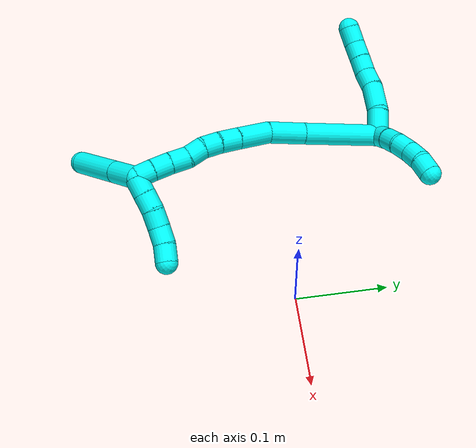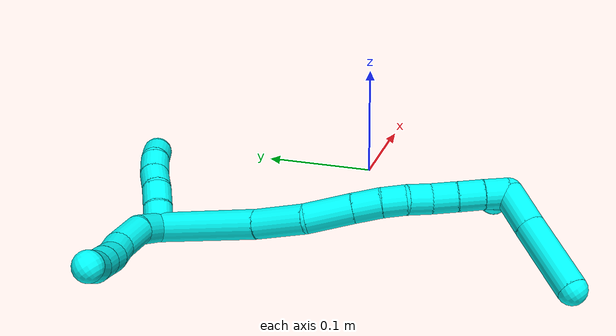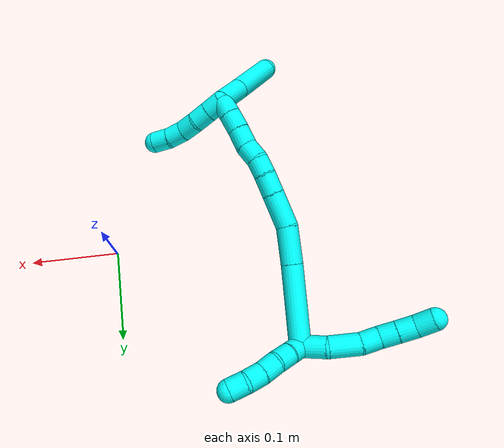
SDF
<sdf version="1.7">
 <world name="default">
  <model name="photoneo_s_sensor">
   <static>1</static>
   <pose>0 0 2 1.57079 1.57079 3.14159</pose>
   <link name="link">
    <inertial><mass>0.1</mass></inertial>
    <sensor name="sensor" type="depth">
     <update_rate>30</update_rate>
     <camera>
      <horizontal_fov>1.22</horizontal_fov>
      <image><width>1920</width><height>1200</height><format>B8G8R8</format></image>
      <clip><near>0.1</near><far>4</far></clip>
      <depth_camera><output>points</output></depth_camera>
     </camera>
     <plugin name="camera_plugin" filename="libgazebo_ros_depth_camera.so">
      <baseline>0.2</baseline>
      <alwaysOn>1</alwaysOn>
      <updateRate>0.0</updateRate>
      <cameraName>camera_ir</cameraName>
      <imageTopicName>/camera/color/image_raw</imageTopicName>
      <cameraInfoTopicName>/camera/color/camera_info</cameraInfoTopicName>
      <depthImageTopicName>/camera/depth/image_raw</depthImageTopicName>
      <depthImageCameraInfoTopicName>/camera/depth/camera_info</depthImageCameraInfoTopicName>
      <pointCloudTopicName>/camera/depth/points</pointCloudTopicName>
      <frameName>fr_optical</frameName>
      <pointCloudCutoff>0.1</pointCloudCutoff>
      <pointCloudCutoffMax>2.0</pointCloudCutoffMax>
      <distortionK1>0</distortionK1>
      <distortionK2>0</distortionK2>
      <distortionK3>0</distortionK3>
      <distortionT1>0</distortionT1>
      <distortionT2>0</distortionT2>
      <CxPrime>0</CxPrime>
      <Cx>0</Cx>
      <Cy>0</Cy>
      <focalLength>0</focalLength>
      <hackBaseline>0</hackBaseline>
     </plugin>
    </sensor>
   </link>
  </model>
  <model name="bin">
   <static>1</static>
   <link name="bottom">
    <collision name="collision-bottom">
     <pose>0 0 -0.01 0 -0 0</pose>
     <geometry><box><size>0.8 0.6 0.02</size></box></geometry>
     <surface>
      <friction><ode><mu>100</mu><mu2>100</mu2></ode></friction>
      <contact><collide_bitmask>65535</collide_bitmask></contact>
     </surface>
    </collision>
   </link>
   <link name="west_wall">
    <collision name="collision-west_wall">
     <pose>-0.41 0 0.1 0 -0 0</pose>
     <geometry><box><size>0.02 0.6 0.2</size></box></geometry>
     <surface>
      <friction><ode><mu>100</mu><mu2>100</mu2></ode></friction>
      <contact><collide_bitmask>65535</collide_bitmask></contact>
     </surface>
    </collision>
   </link>
   <link name="east_wall">
    <collision name="collision-east_wall">
     <pose>0.41 0 0.1 0 -0 0</pose>
     <geometry><box><size>0.02 0.6 0.2</size></box></geometry>
     <surface>
      <friction><ode><mu>100</mu><mu2>100</mu2></ode></friction>
      <contact><collide_bitmask>65535</collide_bitmask></contact>
     </surface>
    </collision>
   </link>
   <link name="south_wall">
    <collision name="collision-south_wall">
     <pose>0 -0.31 0.1 0 -0 0</pose>
     <geometry><box><size>0.8 0.02 0.2</size></box></geometry>
     <surface>
      <friction><ode><mu>100</mu><mu2>100</mu2></ode></friction>
      <contact><collide_bitmask>65535</collide_bitmask></contact>
     </surface>
    </collision>
   </link>
   <link name="north_wall">
    <collision name="collision-north_wall">
     <pose>0 0.31 0.1 0 -0 0</pose>
     <geometry><box><size>0.8 0.02 0.2</size></box></geometry>
     <surface>
      <friction><ode><mu>100</mu><mu2>100</mu2></ode></friction>
      <contact><collide_bitmask>65535</collide_bitmask></contact>
     </surface>
    </collision>
   </link>
  </model>
  <model name="3">
   <static>0</static>
   <link name="3">
    <collision name="collision-cylinder-e_1_2_8">
     <pose>0.012605 0.00793 -0.002761 -1.90584 0.98314 -1.29127</pose>
     <geometry><cylinder><radius>0.0125</radius><length>0.030291</length></cylinder></geometry>
     <surface>
      <friction><ode><mu>1.16</mu><mu2>1.16</mu2><slip1>0</slip1><slip2>0</slip2></ode></friction>
      <contact><ode><kp>1e+06</kp><kd>1</kd><max_vel>0</max_vel><min_depth>0.001</min_depth></ode></contact>
     </surface>
    </collision>
    <visual name="visual-cylinder-e_1_2_8">
     <pose>0.012605 0.00793 -0.002761 -1.90584 0.98314 -1.29127</pose>
     <geometry><cylinder><radius>0.0125</radius><length>0.030291</length></cylinder></geometry>
     <material><ambient>0.003922 1 0.996078 1</ambient></material>
    </visual>
    <collision name="collision-cylinder-e_2_8_9">
     <pose>0.039563 0.02635 -0.003121 -1.34579 0.927458 -0.758546</pose>
     <geometry><cylinder><radius>0.0125</radius><length>0.035881</length></cylinder></geometry>
     <surface>
      <friction><ode><mu>1.16</mu><mu2>1.16</mu2><slip1>0</slip1><slip2>0</slip2></ode></friction>
      <contact><ode><kp>1e+06</kp><kd>1</kd><max_vel>0</max_vel><min_depth>0.001</min_depth></ode></contact>
     </surface>
    </collision>
    <visual name="visual-cylinder-e_2_8_9">
     <pose>0.039563 0.02635 -0.003121 -1.34579 0.927458 -0.758546</pose>
     <geometry><cylinder><radius>0.0125</radius><length>0.035881</length></cylinder></geometry>
     <material><ambient>0.003922 1 0.996078 1</ambient></material>
    </visual>
    <collision name="collision-cylinder-e_3_9_10">
     <pose>0.063567 0.04126 0.001845 -1.04495 1.08386 -0.667456</pose>
     <geometry><cylinder><radius>0.0125</radius><length>0.021838</length></cylinder></geometry>
     <surface>
      <friction><ode><mu>1.16</mu><mu2>1.16</mu2><slip1>0</slip1><slip2>0</slip2></ode></friction>
      <contact><ode><kp>1e+06</kp><kd>1</kd><max_vel>0</max_vel><min_depth>0.001</min_depth></ode></contact>
     </surface>
    </collision>
    <visual name="visual-cylinder-e_3_9_10">
     <pose>0.063567 0.04126 0.001845 -1.04495 1.08386 -0.667456</pose>
     <geometry><cylinder><radius>0.0125</radius><length>0.021838</length></cylinder></geometry>
     <material><ambient>0.003922 1 0.996078 1</ambient></material>
    </visual>
    <collision name="collision-cylinder-e_4_10_11">
     <pose>0.082677 0.049032 0.004888 -1.42895 1.22698 -1.09653</pose>
     <geometry><cylinder><radius>0.0125</radius><length>0.020098</length></cylinder></geometry>
     <surface>
      <friction><ode><mu>1.16</mu><mu2>1.16</mu2><slip1>0</slip1><slip2>0</slip2></ode></friction>
      <contact><ode><kp>1e+06</kp><kd>1</kd><max_vel>0</max_vel><min_depth>0.001</min_depth></ode></contact>
     </surface>
    </collision>
    <visual name="visual-cylinder-e_4_10_11">
     <pose>0.082677 0.049032 0.004888 -1.42895 1.22698 -1.09653</pose>
     <geometry><cylinder><radius>0.0125</radius><length>0.020098</length></cylinder></geometry>
     <material><ambient>0.003922 1 0.996078 1</ambient></material>
    </visual>
    <collision name="collision-cylinder-e_5_11_12">
     <pose>0.101755 0.055804 0.0061 -1.35959 1.2221 -1.03041</pose>
     <geometry><cylinder><radius>0.0125</radius><length>0.020465</length></cylinder></geometry>
     <surface>
      <friction><ode><mu>1.16</mu><mu2>1.16</mu2><slip1>0</slip1><slip2>0</slip2></ode></friction>
      <contact><ode><kp>1e+06</kp><kd>1</kd><max_vel>0</max_vel><min_depth>0.001</min_depth></ode></contact>
     </surface>
    </collision>
    <visual name="visual-cylinder-e_5_11_12">
     <pose>0.101755 0.055804 0.0061 -1.35959 1.2221 -1.03041</pose>
     <geometry><cylinder><radius>0.0125</radius><length>0.020465</length></cylinder></geometry>
     <material><ambient>0.003922 1 0.996078 1</ambient></material>
    </visual>
    <collision name="collision-cylinder-e_6_12_6">
     <pose>0.121908 0.060986 0.006016 -2.00456 1.38834 -1.83232</pose>
     <geometry><cylinder><radius>0.0125</radius><length>0.021429</length></cylinder></geometry>
     <surface>
      <friction><ode><mu>1.16</mu><mu2>1.16</mu2><slip1>0</slip1><slip2>0</slip2></ode></friction>
      <contact><ode><kp>1e+06</kp><kd>1</kd><max_vel>0</max_vel><min_depth>0.001</min_depth></ode></contact>
     </surface>
    </collision>
    <visual name="visual-cylinder-e_6_12_6">
     <pose>0.121908 0.060986 0.006016 -2.00456 1.38834 -1.83232</pose>
     <geometry><cylinder><radius>0.0125</radius><length>0.021429</length></cylinder></geometry>
     <material><ambient>0.003922 1 0.996078 1</ambient></material>
    </visual>
    <collision name="collision-cylinder-e_1_2_13">
     <pose>-0.004334 -0.004447 -0.007839 2.62557 -0.448257 -1.42494</pose>
     <geometry><cylinder><radius>0.0125</radius><length>0.02</length></cylinder></geometry>
     <surface>
      <friction><ode><mu>1.16</mu><mu2>1.16</mu2><slip1>0</slip1><slip2>0</slip2></ode></friction>
      <contact><ode><kp>1e+06</kp><kd>1</kd><max_vel>0</max_vel><min_depth>0.001</min_depth></ode></contact>
     </surface>
    </collision>
    <visual name="visual-cylinder-e_1_2_13">
     <pose>-0.004334 -0.004447 -0.007839 2.62557 -0.448257 -1.42494</pose>
     <geometry><cylinder><radius>0.0125</radius><length>0.02</length></cylinder></geometry>
     <material><ambient>0.003922 1 0.996078 1</ambient></material>
    </visual>
    <collision name="collision-cylinder-e_2_13_14">
     <pose>-0.013961 -0.013089 -0.023052 2.62432 -0.557771 -1.64984</pose>
     <geometry><cylinder><radius>0.0125</radius><length>0.02</length></cylinder></geometry>
     <surface>
      <friction><ode><mu>1.16</mu><mu2>1.16</mu2><slip1>0</slip1><slip2>0</slip2></ode></friction>
      <contact><ode><kp>1e+06</kp><kd>1</kd><max_vel>0</max_vel><min_depth>0.001</min_depth></ode></contact>
     </surface>
    </collision>
    <visual name="visual-cylinder-e_2_13_14">
     <pose>-0.013961 -0.013089 -0.023052 2.62432 -0.557771 -1.64984</pose>
     <geometry><cylinder><radius>0.0125</radius><length>0.02</length></cylinder></geometry>
     <material><ambient>0.003922 1 0.996078 1</ambient></material>
    </visual>
    <collision name="collision-cylinder-e_3_14_15">
     <pose>-0.026343 -0.020172 -0.036861 2.71993 -0.787896 -2.19067</pose>
     <geometry><cylinder><radius>0.0125</radius><length>0.02</length></cylinder></geometry>
     <surface>
      <friction><ode><mu>1.16</mu><mu2>1.16</mu2><slip1>0</slip1><slip2>0</slip2></ode></friction>
      <contact><ode><kp>1e+06</kp><kd>1</kd><max_vel>0</max_vel><min_depth>0.001</min_depth></ode></contact>
     </surface>
    </collision>
    <visual name="visual-cylinder-e_3_14_15">
     <pose>-0.026343 -0.020172 -0.036861 2.71993 -0.787896 -2.19067</pose>
     <geometry><cylinder><radius>0.0125</radius><length>0.02</length></cylinder></geometry>
     <material><ambient>0.003922 1 0.996078 1</ambient></material>
    </visual>
    <collision name="collision-cylinder-e_4_15_16">
     <pose>-0.040301 -0.027208 -0.049263 2.53389 -0.757301 -1.80665</pose>
     <geometry><cylinder><radius>0.0125</radius><length>0.02</length></cylinder></geometry>
     <surface>
      <friction><ode><mu>1.16</mu><mu2>1.16</mu2><slip1>0</slip1><slip2>0</slip2></ode></friction>
      <contact><ode><kp>1e+06</kp><kd>1</kd><max_vel>0</max_vel><min_depth>0.001</min_depth></ode></contact>
     </surface>
    </collision>
    <visual name="visual-cylinder-e_4_15_16">
     <pose>-0.040301 -0.027208 -0.049263 2.53389 -0.757301 -1.80665</pose>
     <geometry><cylinder><radius>0.0125</radius><length>0.02</length></cylinder></geometry>
     <material><ambient>0.003922 1 0.996078 1</ambient></material>
    </visual>
    <collision name="collision-cylinder-e_5_16_5">
     <pose>-0.055774 -0.034899 -0.058894 2.3733 -1.03588 -1.9076</pose>
     <geometry><cylinder><radius>0.0125</radius><length>0.02</length></cylinder></geometry>
     <surface>
      <friction><ode><mu>1.16</mu><mu2>1.16</mu2><slip1>0</slip1><slip2>0</slip2></ode></friction>
      <contact><ode><kp>1e+06</kp><kd>1</kd><max_vel>0</max_vel><min_depth>0.001</min_depth></ode></contact>
     </surface>
    </collision>
    <visual name="visual-cylinder-e_5_16_5">
     <pose>-0.055774 -0.034899 -0.058894 2.3733 -1.03588 -1.9076</pose>
     <geometry><cylinder><radius>0.0125</radius><length>0.02</length></cylinder></geometry>
     <material><ambient>0.003922 1 0.996078 1</ambient></material>
    </visual>
    <collision name="collision-cylinder-e_1_2_17">
     <pose>0.021404 -0.032989 0.022321 0.975936 0.493095 0.265588</pose>
     <geometry><cylinder><radius>0.0125</radius><length>0.090434</length></cylinder></geometry>
     <surface>
      <friction><ode><mu>1.16</mu><mu2>1.16</mu2><slip1>0</slip1><slip2>0</slip2></ode></friction>
      <contact><ode><kp>1e+06</kp><kd>1</kd><max_vel>0</max_vel><min_depth>0.001</min_depth></ode></contact>
     </surface>
    </collision>
    <visual name="visual-cylinder-e_1_2_17">
     <pose>0.021404 -0.032989 0.022321 0.975936 0.493095 0.265588</pose>
     <geometry><cylinder><radius>0.0125</radius><length>0.090434</length></cylinder></geometry>
     <material><ambient>0.003922 1 0.996078 1</ambient></material>
    </visual>
    <collision name="collision-cylinder-e_2_17_18">
     <pose>0.052888 -0.082591 0.054005 1.05757 0.486277 0.287855</pose>
     <geometry><cylinder><radius>0.0125</radius><length>0.043142</length></cylinder></geometry>
     <surface>
      <friction><ode><mu>1.16</mu><mu2>1.16</mu2><slip1>0</slip1><slip2>0</slip2></ode></friction>
      <contact><ode><kp>1e+06</kp><kd>1</kd><max_vel>0</max_vel><min_depth>0.001</min_depth></ode></contact>
     </surface>
    </collision>
    <visual name="visual-cylinder-e_2_17_18">
     <pose>0.052888 -0.082591 0.054005 1.05757 0.486277 0.287855</pose>
     <geometry><cylinder><radius>0.0125</radius><length>0.043142</length></cylinder></geometry>
     <material><ambient>0.003922 1 0.996078 1</ambient></material>
    </visual>
    <collision name="collision-cylinder-e_3_18_19">
     <pose>0.067649 -0.116918 0.070521 1.18704 0.24022 0.162494</pose>
     <geometry><cylinder><radius>0.0125</radius><length>0.039336</length></cylinder></geometry>
     <surface>
      <friction><ode><mu>1.16</mu><mu2>1.16</mu2><slip1>0</slip1><slip2>0</slip2></ode></friction>
      <contact><ode><kp>1e+06</kp><kd>1</kd><max_vel>0</max_vel><min_depth>0.001</min_depth></ode></contact>
     </surface>
    </collision>
    <visual name="visual-cylinder-e_3_18_19">
     <pose>0.067649 -0.116918 0.070521 1.18704 0.24022 0.162494</pose>
     <geometry><cylinder><radius>0.0125</radius><length>0.039336</length></cylinder></geometry>
     <material><ambient>0.003922 1 0.996078 1</ambient></material>
    </visual>
    <collision name="collision-cylinder-e_4_19_20">
     <pose>0.074997 -0.145136 0.082198 1.16399 0.22925 0.151226</pose>
     <geometry><cylinder><radius>0.0125</radius><length>0.023489</length></cylinder></geometry>
     <surface>
      <friction><ode><mu>1.16</mu><mu2>1.16</mu2><slip1>0</slip1><slip2>0</slip2></ode></friction>
      <contact><ode><kp>1e+06</kp><kd>1</kd><max_vel>0</max_vel><min_depth>0.001</min_depth></ode></contact>
     </surface>
    </collision>
    <visual name="visual-cylinder-e_4_19_20">
     <pose>0.074997 -0.145136 0.082198 1.16399 0.22925 0.151226</pose>
     <geometry><cylinder><radius>0.0125</radius><length>0.023489</length></cylinder></geometry>
     <material><ambient>0.003922 1 0.996078 1</ambient></material>
    </visual>
    <collision name="collision-cylinder-e_5_20_21">
     <pose>0.079241 -0.164474 0.091335 1.08976 0.156766 0.095136</pose>
     <geometry><cylinder><radius>0.0125</radius><length>0.020179</length></cylinder></geometry>
     <surface>
      <friction><ode><mu>1.16</mu><mu2>1.16</mu2><slip1>0</slip1><slip2>0</slip2></ode></friction>
      <contact><ode><kp>1e+06</kp><kd>1</kd><max_vel>0</max_vel><min_depth>0.001</min_depth></ode></contact>
     </surface>
    </collision>
    <visual name="visual-cylinder-e_5_20_21">
     <pose>0.079241 -0.164474 0.091335 1.08976 0.156766 0.095136</pose>
     <geometry><cylinder><radius>0.0125</radius><length>0.020179</length></cylinder></geometry>
     <material><ambient>0.003922 1 0.996078 1</ambient></material>
    </visual>
    <collision name="collision-cylinder-e_6_21_22">
     <pose>0.079832 -0.182034 0.101108 1.03661 -0.096788 -0.055228</pose>
     <geometry><cylinder><radius>0.0125</radius><length>0.02037</length></cylinder></geometry>
     <surface>
      <friction><ode><mu>1.16</mu><mu2>1.16</mu2><slip1>0</slip1><slip2>0</slip2></ode></friction>
      <contact><ode><kp>1e+06</kp><kd>1</kd><max_vel>0</max_vel><min_depth>0.001</min_depth></ode></contact>
     </surface>
    </collision>
    <visual name="visual-cylinder-e_6_21_22">
     <pose>0.079832 -0.182034 0.101108 1.03661 -0.096788 -0.055228</pose>
     <geometry><cylinder><radius>0.0125</radius><length>0.02037</length></cylinder></geometry>
     <material><ambient>0.003922 1 0.996078 1</ambient></material>
    </visual>
    <collision name="collision-cylinder-e_7_22_23">
     <pose>0.080483 -0.200032 0.111538 1.05406 0.152138 0.088647</pose>
     <geometry><cylinder><radius>0.0125</radius><length>0.021579</length></cylinder></geometry>
     <surface>
      <friction><ode><mu>1.16</mu><mu2>1.16</mu2><slip1>0</slip1><slip2>0</slip2></ode></friction>
      <contact><ode><kp>1e+06</kp><kd>1</kd><max_vel>0</max_vel><min_depth>0.001</min_depth></ode></contact>
     </surface>
    </collision>
    <visual name="visual-cylinder-e_7_22_23">
     <pose>0.080483 -0.200032 0.111538 1.05406 0.152138 0.088647</pose>
     <geometry><cylinder><radius>0.0125</radius><length>0.021579</length></cylinder></geometry>
     <material><ambient>0.003922 1 0.996078 1</ambient></material>
    </visual>
    <collision name="collision-cylinder-e_8_23_24">
     <pose>0.083067 -0.218615 0.121964 1.06501 0.088935 0.052431</pose>
     <geometry><cylinder><radius>0.0125</radius><length>0.021373</length></cylinder></geometry>
     <surface>
      <friction><ode><mu>1.16</mu><mu2>1.16</mu2><slip1>0</slip1><slip2>0</slip2></ode></friction>
      <contact><ode><kp>1e+06</kp><kd>1</kd><max_vel>0</max_vel><min_depth>0.001</min_depth></ode></contact>
     </surface>
    </collision>
    <visual name="visual-cylinder-e_8_23_24">
     <pose>0.083067 -0.218615 0.121964 1.06501 0.088935 0.052431</pose>
     <geometry><cylinder><radius>0.0125</radius><length>0.021373</length></cylinder></geometry>
     <material><ambient>0.003922 1 0.996078 1</ambient></material>
    </visual>
    <collision name="collision-cylinder-e_9_24_1">
     <pose>0.084513 -0.236632 0.132117 1.04976 0.049478 0.028655</pose>
     <geometry><cylinder><radius>0.0125</radius><length>0.020098</length></cylinder></geometry>
     <surface>
      <friction><ode><mu>1.16</mu><mu2>1.16</mu2><slip1>0</slip1><slip2>0</slip2></ode></friction>
      <contact><ode><kp>1e+06</kp><kd>1</kd><max_vel>0</max_vel><min_depth>0.001</min_depth></ode></contact>
     </surface>
    </collision>
    <visual name="visual-cylinder-e_9_24_1">
     <pose>0.084513 -0.236632 0.132117 1.04976 0.049478 0.028655</pose>
     <geometry><cylinder><radius>0.0125</radius><length>0.020098</length></cylinder></geometry>
     <material><ambient>0.003922 1 0.996078 1</ambient></material>
    </visual>
    <collision name="collision-cylinder-e_1_1_25">
     <pose>0.075023 -0.245776 0.136885 2.04975 -1.52125 -2.00526</pose>
     <geometry><cylinder><radius>0.0125</radius><length>0.02</length></cylinder></geometry>
     <surface>
      <friction><ode><mu>1.16</mu><mu2>1.16</mu2><slip1>0</slip1><slip2>0</slip2></ode></friction>
      <contact><ode><kp>1e+06</kp><kd>1</kd><max_vel>0</max_vel><min_depth>0.001</min_depth></ode></contact>
     </surface>
    </collision>
    <visual name="visual-cylinder-e_1_1_25">
     <pose>0.075023 -0.245776 0.136885 2.04975 -1.52125 -2.00526</pose>
     <geometry><cylinder><radius>0.0125</radius><length>0.02</length></cylinder></geometry>
     <material><ambient>0.003922 1 0.996078 1</ambient></material>
    </visual>
    <collision name="collision-cylinder-e_2_25_26">
     <pose>0.055056 -0.246754 0.136295 2.16255 -1.50594 -2.10773</pose>
     <geometry><cylinder><radius>0.0125</radius><length>0.02</length></cylinder></geometry>
     <surface>
      <friction><ode><mu>1.16</mu><mu2>1.16</mu2><slip1>0</slip1><slip2>0</slip2></ode></friction>
      <contact><ode><kp>1e+06</kp><kd>1</kd><max_vel>0</max_vel><min_depth>0.001</min_depth></ode></contact>
     </surface>
    </collision>
    <visual name="visual-cylinder-e_2_25_26">
     <pose>0.055056 -0.246754 0.136295 2.16255 -1.50594 -2.10773</pose>
     <geometry><cylinder><radius>0.0125</radius><length>0.02</length></cylinder></geometry>
     <material><ambient>0.003922 1 0.996078 1</ambient></material>
    </visual>
    <collision name="collision-cylinder-e_3_26_27">
     <pose>0.035206 -0.247913 0.137412 0.398051 -1.40974 -0.339836</pose>
     <geometry><cylinder><radius>0.0125</radius><length>0.02</length></cylinder></geometry>
     <surface>
      <friction><ode><mu>1.16</mu><mu2>1.16</mu2><slip1>0</slip1><slip2>0</slip2></ode></friction>
      <contact><ode><kp>1e+06</kp><kd>1</kd><max_vel>0</max_vel><min_depth>0.001</min_depth></ode></contact>
     </surface>
    </collision>
    <visual name="visual-cylinder-e_3_26_27">
     <pose>0.035206 -0.247913 0.137412 0.398051 -1.40974 -0.339836</pose>
     <geometry><cylinder><radius>0.0125</radius><length>0.02</length></cylinder></geometry>
     <material><ambient>0.003922 1 0.996078 1</ambient></material>
    </visual>
    <collision name="collision-cylinder-e_4_27_28">
     <pose>0.015604 -0.250829 0.139035 1.50774 -1.33882 -1.2779</pose>
     <geometry><cylinder><radius>0.0125</radius><length>0.02</length></cylinder></geometry>
     <surface>
      <friction><ode><mu>1.16</mu><mu2>1.16</mu2><slip1>0</slip1><slip2>0</slip2></ode></friction>
      <contact><ode><kp>1e+06</kp><kd>1</kd><max_vel>0</max_vel><min_depth>0.001</min_depth></ode></contact>
     </surface>
    </collision>
    <visual name="visual-cylinder-e_4_27_28">
     <pose>0.015604 -0.250829 0.139035 1.50774 -1.33882 -1.2779</pose>
     <geometry><cylinder><radius>0.0125</radius><length>0.02</length></cylinder></geometry>
     <material><ambient>0.003922 1 0.996078 1</ambient></material>
    </visual>
    <collision name="collision-cylinder-e_5_28_4">
     <pose>-0.003303 -0.256913 0.14039 1.26149 -1.16167 -0.893921</pose>
     <geometry><cylinder><radius>0.0125</radius><length>0.02</length></cylinder></geometry>
     <surface>
      <friction><ode><mu>1.16</mu><mu2>1.16</mu2><slip1>0</slip1><slip2>0</slip2></ode></friction>
      <contact><ode><kp>1e+06</kp><kd>1</kd><max_vel>0</max_vel><min_depth>0.001</min_depth></ode></contact>
     </surface>
    </collision>
    <visual name="visual-cylinder-e_5_28_4">
     <pose>-0.003303 -0.256913 0.14039 1.26149 -1.16167 -0.893921</pose>
     <geometry><cylinder><radius>0.0125</radius><length>0.02</length></cylinder></geometry>
     <material><ambient>0.003922 1 0.996078 1</ambient></material>
    </visual>
    <collision name="collision-cylinder-e_1_1_29">
     <pose>0.093896 -0.242407 0.152506 -0.188101 0.515881 -0.049761</pose>
     <geometry><cylinder><radius>0.0125</radius><length>0.036027</length></cylinder></geometry>
     <surface>
      <friction><ode><mu>1.16</mu><mu2>1.16</mu2><slip1>0</slip1><slip2>0</slip2></ode></friction>
      <contact><ode><kp>1e+06</kp><kd>1</kd><max_vel>0</max_vel><min_depth>0.001</min_depth></ode></contact>
     </surface>
    </collision>
    <visual name="visual-cylinder-e_1_1_29">
     <pose>0.093896 -0.242407 0.152506 -0.188101 0.515881 -0.049761</pose>
     <geometry><cylinder><radius>0.0125</radius><length>0.036027</length></cylinder></geometry>
     <material><ambient>0.003922 1 0.996078 1</ambient></material>
    </visual>
    <collision name="collision-cylinder-e_2_29_3">
     <pose>0.118838 -0.234775 0.195161 -0.170773 0.52585 -0.046069</pose>
     <geometry><cylinder><radius>0.0125</radius><length>0.063973</length></cylinder></geometry>
     <surface>
      <friction><ode><mu>1.16</mu><mu2>1.16</mu2><slip1>0</slip1><slip2>0</slip2></ode></friction>
      <contact><ode><kp>1e+06</kp><kd>1</kd><max_vel>0</max_vel><min_depth>0.001</min_depth></ode></contact>
     </surface>
    </collision>
    <visual name="visual-cylinder-e_2_29_3">
     <pose>0.118838 -0.234775 0.195161 -0.170773 0.52585 -0.046069</pose>
     <geometry><cylinder><radius>0.0125</radius><length>0.063973</length></cylinder></geometry>
     <material><ambient>0.003922 1 0.996078 1</ambient></material>
    </visual>
    <collision name="collision-sphere-3">
     <pose>0.134894 -0.230074 0.222424 0 -0 0</pose>
     <geometry><sphere><radius>0.0125</radius></sphere></geometry>
     <surface>
      <friction><ode><mu>1.16</mu><mu2>1.16</mu2><slip1>0</slip1><slip2>0</slip2></ode></friction>
      <contact><ode><kp>1e+06</kp><kd>1</kd><max_vel>0</max_vel><min_depth>0.001</min_depth></ode></contact>
     </surface>
    </collision>
    <visual name="visual-sphere-3">
     <pose>0.134894 -0.230074 0.222424 0 -0 0</pose>
     <geometry><sphere><radius>0.0125</radius></sphere></geometry>
     <material><ambient>0.003922 1 0.996078 1</ambient></material>
    </visual>
    <collision name="collision-sphere-29">
     <pose>0.102782 -0.239477 0.167899 0 -0 0</pose>
     <geometry><sphere><radius>0.0125</radius></sphere></geometry>
     <surface>
      <friction><ode><mu>1.16</mu><mu2>1.16</mu2><slip1>0</slip1><slip2>0</slip2></ode></friction>
      <contact><ode><kp>1e+06</kp><kd>1</kd><max_vel>0</max_vel><min_depth>0.001</min_depth></ode></contact>
     </surface>
    </collision>
    <visual name="visual-sphere-29">
     <pose>0.102782 -0.239477 0.167899 0 -0 0</pose>
     <geometry><sphere><radius>0.0125</radius></sphere></geometry>
     <material><ambient>0.003922 1 0.996078 1</ambient></material>
    </visual>
    <collision name="collision-sphere-4">
     <pose>-0.012478 -0.260703 0.141601 0 -0 0</pose>
     <geometry><sphere><radius>0.0125</radius></sphere></geometry>
     <surface>
      <friction><ode><mu>1.16</mu><mu2>1.16</mu2><slip1>0</slip1><slip2>0</slip2></ode></friction>
      <contact><ode><kp>1e+06</kp><kd>1</kd><max_vel>0</max_vel><min_depth>0.001</min_depth></ode></contact>
     </surface>
    </collision>
    <visual name="visual-sphere-4">
     <pose>-0.012478 -0.260703 0.141601 0 -0 0</pose>
     <geometry><sphere><radius>0.0125</radius></sphere></geometry>
     <material><ambient>0.003922 1 0.996078 1</ambient></material>
    </visual>
    <collision name="collision-sphere-28">
     <pose>0.005871 -0.253124 0.13918 0 -0 0</pose>
     <geometry><sphere><radius>0.0125</radius></sphere></geometry>
     <surface>
      <friction><ode><mu>1.16</mu><mu2>1.16</mu2><slip1>0</slip1><slip2>0</slip2></ode></friction>
      <contact><ode><kp>1e+06</kp><kd>1</kd><max_vel>0</max_vel><min_depth>0.001</min_depth></ode></contact>
     </surface>
    </collision>
    <visual name="visual-sphere-28">
     <pose>0.005871 -0.253124 0.13918 0 -0 0</pose>
     <geometry><sphere><radius>0.0125</radius></sphere></geometry>
     <material><ambient>0.003922 1 0.996078 1</ambient></material>
    </visual>
    <collision name="collision-sphere-27">
     <pose>0.025336 -0.248535 0.13889 0 -0 0</pose>
     <geometry><sphere><radius>0.0125</radius></sphere></geometry>
     <surface>
      <friction><ode><mu>1.16</mu><mu2>1.16</mu2><slip1>0</slip1><slip2>0</slip2></ode></friction>
      <contact><ode><kp>1e+06</kp><kd>1</kd><max_vel>0</max_vel><min_depth>0.001</min_depth></ode></contact>
     </surface>
    </collision>
    <visual name="visual-sphere-27">
     <pose>0.025336 -0.248535 0.13889 0 -0 0</pose>
     <geometry><sphere><radius>0.0125</radius></sphere></geometry>
     <material><ambient>0.003922 1 0.996078 1</ambient></material>
    </visual>
    <collision name="collision-sphere-26">
     <pose>0.045077 -0.247292 0.135933 0 -0 0</pose>
     <geometry><sphere><radius>0.0125</radius></sphere></geometry>
     <surface>
      <friction><ode><mu>1.16</mu><mu2>1.16</mu2><slip1>0</slip1><slip2>0</slip2></ode></friction>
      <contact><ode><kp>1e+06</kp><kd>1</kd><max_vel>0</max_vel><min_depth>0.001</min_depth></ode></contact>
     </surface>
    </collision>
    <visual name="visual-sphere-26">
     <pose>0.045077 -0.247292 0.135933 0 -0 0</pose>
     <geometry><sphere><radius>0.0125</radius></sphere></geometry>
     <material><ambient>0.003922 1 0.996078 1</ambient></material>
    </visual>
    <collision name="collision-sphere-25">
     <pose>0.065035 -0.246216 0.136657 0 -0 0</pose>
     <geometry><sphere><radius>0.0125</radius></sphere></geometry>
     <surface>
      <friction><ode><mu>1.16</mu><mu2>1.16</mu2><slip1>0</slip1><slip2>0</slip2></ode></friction>
      <contact><ode><kp>1e+06</kp><kd>1</kd><max_vel>0</max_vel><min_depth>0.001</min_depth></ode></contact>
     </surface>
    </collision>
    <visual name="visual-sphere-25">
     <pose>0.065035 -0.246216 0.136657 0 -0 0</pose>
     <geometry><sphere><radius>0.0125</radius></sphere></geometry>
     <material><ambient>0.003922 1 0.996078 1</ambient></material>
    </visual>
    <collision name="collision-sphere-1">
     <pose>0.08501 -0.245337 0.137113 0 -0 0</pose>
     <geometry><sphere><radius>0.0125</radius></sphere></geometry>
     <surface>
      <friction><ode><mu>1.16</mu><mu2>1.16</mu2><slip1>0</slip1><slip2>0</slip2></ode></friction>
      <contact><ode><kp>1e+06</kp><kd>1</kd><max_vel>0</max_vel><min_depth>0.001</min_depth></ode></contact>
     </surface>
    </collision>
    <visual name="visual-sphere-1">
     <pose>0.08501 -0.245337 0.137113 0 -0 0</pose>
     <geometry><sphere><radius>0.0125</radius></sphere></geometry>
     <material><ambient>0.003922 1 0.996078 1</ambient></material>
    </visual>
    <collision name="collision-sphere-24">
     <pose>0.084016 -0.227927 0.127121 0 -0 0</pose>
     <geometry><sphere><radius>0.0125</radius></sphere></geometry>
     <surface>
      <friction><ode><mu>1.16</mu><mu2>1.16</mu2><slip1>0</slip1><slip2>0</slip2></ode></friction>
      <contact><ode><kp>1e+06</kp><kd>1</kd><max_vel>0</max_vel><min_depth>0.001</min_depth></ode></contact>
     </surface>
    </collision>
    <visual name="visual-sphere-24">
     <pose>0.084016 -0.227927 0.127121 0 -0 0</pose>
     <geometry><sphere><radius>0.0125</radius></sphere></geometry>
     <material><ambient>0.003922 1 0.996078 1</ambient></material>
    </visual>
    <collision name="collision-sphere-23">
     <pose>0.082118 -0.209304 0.116807 0 -0 0</pose>
     <geometry><sphere><radius>0.0125</radius></sphere></geometry>
     <surface>
      <friction><ode><mu>1.16</mu><mu2>1.16</mu2><slip1>0</slip1><slip2>0</slip2></ode></friction>
      <contact><ode><kp>1e+06</kp><kd>1</kd><max_vel>0</max_vel><min_depth>0.001</min_depth></ode></contact>
     </surface>
    </collision>
    <visual name="visual-sphere-23">
     <pose>0.082118 -0.209304 0.116807 0 -0 0</pose>
     <geometry><sphere><radius>0.0125</radius></sphere></geometry>
     <material><ambient>0.003922 1 0.996078 1</ambient></material>
    </visual>
    <collision name="collision-sphere-22">
     <pose>0.078848 -0.190759 0.106269 0 -0 0</pose>
     <geometry><sphere><radius>0.0125</radius></sphere></geometry>
     <surface>
      <friction><ode><mu>1.16</mu><mu2>1.16</mu2><slip1>0</slip1><slip2>0</slip2></ode></friction>
      <contact><ode><kp>1e+06</kp><kd>1</kd><max_vel>0</max_vel><min_depth>0.001</min_depth></ode></contact>
     </surface>
    </collision>
    <visual name="visual-sphere-22">
     <pose>0.078848 -0.190759 0.106269 0 -0 0</pose>
     <geometry><sphere><radius>0.0125</radius></sphere></geometry>
     <material><ambient>0.003922 1 0.996078 1</ambient></material>
    </visual>
    <collision name="collision-sphere-21">
     <pose>0.080816 -0.173309 0.095946 0 -0 0</pose>
     <geometry><sphere><radius>0.0125</radius></sphere></geometry>
     <surface>
      <friction><ode><mu>1.16</mu><mu2>1.16</mu2><slip1>0</slip1><slip2>0</slip2></ode></friction>
      <contact><ode><kp>1e+06</kp><kd>1</kd><max_vel>0</max_vel><min_depth>0.001</min_depth></ode></contact>
     </surface>
    </collision>
    <visual name="visual-sphere-21">
     <pose>0.080816 -0.173309 0.095946 0 -0 0</pose>
     <geometry><sphere><radius>0.0125</radius></sphere></geometry>
     <material><ambient>0.003922 1 0.996078 1</ambient></material>
    </visual>
    <collision name="collision-sphere-12">
     <pose>0.111371 0.059222 0.006833 0 -0 0</pose>
     <geometry><sphere><radius>0.0125</radius></sphere></geometry>
     <surface>
      <friction><ode><mu>1.16</mu><mu2>1.16</mu2><slip1>0</slip1><slip2>0</slip2></ode></friction>
      <contact><ode><kp>1e+06</kp><kd>1</kd><max_vel>0</max_vel><min_depth>0.001</min_depth></ode></contact>
     </surface>
    </collision>
    <visual name="visual-sphere-12">
     <pose>0.111371 0.059222 0.006833 0 -0 0</pose>
     <geometry><sphere><radius>0.0125</radius></sphere></geometry>
     <material><ambient>0.003922 1 0.996078 1</ambient></material>
    </visual>
    <collision name="collision-sphere-11">
     <pose>0.092138 0.052385 0.005367 0 -0 0</pose>
     <geometry><sphere><radius>0.0125</radius></sphere></geometry>
     <surface>
      <friction><ode><mu>1.16</mu><mu2>1.16</mu2><slip1>0</slip1><slip2>0</slip2></ode></friction>
      <contact><ode><kp>1e+06</kp><kd>1</kd><max_vel>0</max_vel><min_depth>0.001</min_depth></ode></contact>
     </surface>
    </collision>
    <visual name="visual-sphere-11">
     <pose>0.092138 0.052385 0.005367 0 -0 0</pose>
     <geometry><sphere><radius>0.0125</radius></sphere></geometry>
     <material><ambient>0.003922 1 0.996078 1</ambient></material>
    </visual>
    <collision name="collision-sphere-10">
     <pose>0.073216 0.045679 0.004409 0 -0 0</pose>
     <geometry><sphere><radius>0.0125</radius></sphere></geometry>
     <surface>
      <friction><ode><mu>1.16</mu><mu2>1.16</mu2><slip1>0</slip1><slip2>0</slip2></ode></friction>
      <contact><ode><kp>1e+06</kp><kd>1</kd><max_vel>0</max_vel><min_depth>0.001</min_depth></ode></contact>
     </surface>
    </collision>
    <visual name="visual-sphere-10">
     <pose>0.073216 0.045679 0.004409 0 -0 0</pose>
     <geometry><sphere><radius>0.0125</radius></sphere></geometry>
     <material><ambient>0.003922 1 0.996078 1</ambient></material>
    </visual>
    <collision name="collision-sphere-9">
     <pose>0.053917 0.036841 -0.00072 0 -0 0</pose>
     <geometry><sphere><radius>0.0125</radius></sphere></geometry>
     <surface>
      <friction><ode><mu>1.16</mu><mu2>1.16</mu2><slip1>0</slip1><slip2>0</slip2></ode></friction>
      <contact><ode><kp>1e+06</kp><kd>1</kd><max_vel>0</max_vel><min_depth>0.001</min_depth></ode></contact>
     </surface>
    </collision>
    <visual name="visual-sphere-9">
     <pose>0.053917 0.036841 -0.00072 0 -0 0</pose>
     <geometry><sphere><radius>0.0125</radius></sphere></geometry>
     <material><ambient>0.003922 1 0.996078 1</ambient></material>
    </visual>
    <collision name="collision-sphere-2">
     <geometry><sphere><radius>0.0125</radius></sphere></geometry>
     <surface>
      <friction><ode><mu>1.16</mu><mu2>1.16</mu2><slip1>0</slip1><slip2>0</slip2></ode></friction>
      <contact><ode><kp>1e+06</kp><kd>1</kd><max_vel>0</max_vel><min_depth>0.001</min_depth></ode></contact>
     </surface>
    </collision>
    <visual name="visual-sphere-2">
     <geometry><sphere><radius>0.0125</radius></sphere></geometry>
     <material><ambient>0.003922 1 0.996078 1</ambient></material>
    </visual>
    <collision name="collision-sphere-19">
     <pose>0.072328 -0.134632 0.077673 0 -0 0</pose>
     <geometry><sphere><radius>0.0125</radius></sphere></geometry>
     <surface>
      <friction><ode><mu>1.16</mu><mu2>1.16</mu2><slip1>0</slip1><slip2>0</slip2></ode></friction>
      <contact><ode><kp>1e+06</kp><kd>1</kd><max_vel>0</max_vel><min_depth>0.001</min_depth></ode></contact>
     </surface>
    </collision>
    <visual name="visual-sphere-19">
     <pose>0.072328 -0.134632 0.077673 0 -0 0</pose>
     <geometry><sphere><radius>0.0125</radius></sphere></geometry>
     <material><ambient>0.003922 1 0.996078 1</ambient></material>
    </visual>
    <collision name="collision-sphere-8">
     <pose>0.025209 0.01586 -0.005522 0 -0 0</pose>
     <geometry><sphere><radius>0.0125</radius></sphere></geometry>
     <surface>
      <friction><ode><mu>1.16</mu><mu2>1.16</mu2><slip1>0</slip1><slip2>0</slip2></ode></friction>
      <contact><ode><kp>1e+06</kp><kd>1</kd><max_vel>0</max_vel><min_depth>0.001</min_depth></ode></contact>
     </surface>
    </collision>
    <visual name="visual-sphere-8">
     <pose>0.025209 0.01586 -0.005522 0 -0 0</pose>
     <geometry><sphere><radius>0.0125</radius></sphere></geometry>
     <material><ambient>0.003922 1 0.996078 1</ambient></material>
    </visual>
    <collision name="collision-sphere-6">
     <pose>0.132444 0.06275 0.005199 0 -0 0</pose>
     <geometry><sphere><radius>0.0125</radius></sphere></geometry>
     <surface>
      <friction><ode><mu>1.16</mu><mu2>1.16</mu2><slip1>0</slip1><slip2>0</slip2></ode></friction>
      <contact><ode><kp>1e+06</kp><kd>1</kd><max_vel>0</max_vel><min_depth>0.001</min_depth></ode></contact>
     </surface>
    </collision>
    <visual name="visual-sphere-6">
     <pose>0.132444 0.06275 0.005199 0 -0 0</pose>
     <geometry><sphere><radius>0.0125</radius></sphere></geometry>
     <material><ambient>0.003922 1 0.996078 1</ambient></material>
    </visual>
    <collision name="collision-sphere-13">
     <pose>-0.008668 -0.008894 -0.015677 0 -0 0</pose>
     <geometry><sphere><radius>0.0125</radius></sphere></geometry>
     <surface>
      <friction><ode><mu>1.16</mu><mu2>1.16</mu2><slip1>0</slip1><slip2>0</slip2></ode></friction>
      <contact><ode><kp>1e+06</kp><kd>1</kd><max_vel>0</max_vel><min_depth>0.001</min_depth></ode></contact>
     </surface>
    </collision>
    <visual name="visual-sphere-13">
     <pose>-0.008668 -0.008894 -0.015677 0 -0 0</pose>
     <geometry><sphere><radius>0.0125</radius></sphere></geometry>
     <material><ambient>0.003922 1 0.996078 1</ambient></material>
    </visual>
    <collision name="collision-sphere-14">
     <pose>-0.019254 -0.017285 -0.030426 0 -0 0</pose>
     <geometry><sphere><radius>0.0125</radius></sphere></geometry>
     <surface>
      <friction><ode><mu>1.16</mu><mu2>1.16</mu2><slip1>0</slip1><slip2>0</slip2></ode></friction>
      <contact><ode><kp>1e+06</kp><kd>1</kd><max_vel>0</max_vel><min_depth>0.001</min_depth></ode></contact>
     </surface>
    </collision>
    <visual name="visual-sphere-14">
     <pose>-0.019254 -0.017285 -0.030426 0 -0 0</pose>
     <geometry><sphere><radius>0.0125</radius></sphere></geometry>
     <material><ambient>0.003922 1 0.996078 1</ambient></material>
    </visual>
    <collision name="collision-sphere-15">
     <pose>-0.033431 -0.023058 -0.043297 0 -0 0</pose>
     <geometry><sphere><radius>0.0125</radius></sphere></geometry>
     <surface>
      <friction><ode><mu>1.16</mu><mu2>1.16</mu2><slip1>0</slip1><slip2>0</slip2></ode></friction>
      <contact><ode><kp>1e+06</kp><kd>1</kd><max_vel>0</max_vel><min_depth>0.001</min_depth></ode></contact>
     </surface>
    </collision>
    <visual name="visual-sphere-15">
     <pose>-0.033431 -0.023058 -0.043297 0 -0 0</pose>
     <geometry><sphere><radius>0.0125</radius></sphere></geometry>
     <material><ambient>0.003922 1 0.996078 1</ambient></material>
    </visual>
    <collision name="collision-sphere-16">
     <pose>-0.047171 -0.031357 -0.055229 0 -0 0</pose>
     <geometry><sphere><radius>0.0125</radius></sphere></geometry>
     <surface>
      <friction><ode><mu>1.16</mu><mu2>1.16</mu2><slip1>0</slip1><slip2>0</slip2></ode></friction>
      <contact><ode><kp>1e+06</kp><kd>1</kd><max_vel>0</max_vel><min_depth>0.001</min_depth></ode></contact>
     </surface>
    </collision>
    <visual name="visual-sphere-16">
     <pose>-0.047171 -0.031357 -0.055229 0 -0 0</pose>
     <geometry><sphere><radius>0.0125</radius></sphere></geometry>
     <material><ambient>0.003922 1 0.996078 1</ambient></material>
    </visual>
    <collision name="collision-sphere-5">
     <pose>-0.064377 -0.038442 -0.06256 0 -0 0</pose>
     <geometry><sphere><radius>0.0125</radius></sphere></geometry>
     <surface>
      <friction><ode><mu>1.16</mu><mu2>1.16</mu2><slip1>0</slip1><slip2>0</slip2></ode></friction>
      <contact><ode><kp>1e+06</kp><kd>1</kd><max_vel>0</max_vel><min_depth>0.001</min_depth></ode></contact>
     </surface>
    </collision>
    <visual name="visual-sphere-5">
     <pose>-0.064377 -0.038442 -0.06256 0 -0 0</pose>
     <geometry><sphere><radius>0.0125</radius></sphere></geometry>
     <material><ambient>0.003922 1 0.996078 1</ambient></material>
    </visual>
    <collision name="collision-sphere-17">
     <pose>0.042807 -0.065977 0.044641 0 -0 0</pose>
     <geometry><sphere><radius>0.0125</radius></sphere></geometry>
     <surface>
      <friction><ode><mu>1.16</mu><mu2>1.16</mu2><slip1>0</slip1><slip2>0</slip2></ode></friction>
      <contact><ode><kp>1e+06</kp><kd>1</kd><max_vel>0</max_vel><min_depth>0.001</min_depth></ode></contact>
     </surface>
    </collision>
    <visual name="visual-sphere-17">
     <pose>0.042807 -0.065977 0.044641 0 -0 0</pose>
     <geometry><sphere><radius>0.0125</radius></sphere></geometry>
     <material><ambient>0.003922 1 0.996078 1</ambient></material>
    </visual>
    <collision name="collision-sphere-18">
     <pose>0.062969 -0.099204 0.063368 0 -0 0</pose>
     <geometry><sphere><radius>0.0125</radius></sphere></geometry>
     <surface>
      <friction><ode><mu>1.16</mu><mu2>1.16</mu2><slip1>0</slip1><slip2>0</slip2></ode></friction>
      <contact><ode><kp>1e+06</kp><kd>1</kd><max_vel>0</max_vel><min_depth>0.001</min_depth></ode></contact>
     </surface>
    </collision>
    <visual name="visual-sphere-18">
     <pose>0.062969 -0.099204 0.063368 0 -0 0</pose>
     <geometry><sphere><radius>0.0125</radius></sphere></geometry>
     <material><ambient>0.003922 1 0.996078 1</ambient></material>
    </visual>
    <collision name="collision-sphere-20">
     <pose>0.077666 -0.15564 0.086724 0 -0 0</pose>
     <geometry><sphere><radius>0.0125</radius></sphere></geometry>
     <surface>
      <friction><ode><mu>1.16</mu><mu2>1.16</mu2><slip1>0</slip1><slip2>0</slip2></ode></friction>
      <contact><ode><kp>1e+06</kp><kd>1</kd><max_vel>0</max_vel><min_depth>0.001</min_depth></ode></contact>
     </surface>
    </collision>
    <visual name="visual-sphere-20">
     <pose>0.077666 -0.15564 0.086724 0 -0 0</pose>
     <geometry><sphere><radius>0.0125</radius></sphere></geometry>
     <material><ambient>0.003922 1 0.996078 1</ambient></material>
    </visual>
    <inertial>
     <pose>0.051126 -0.107357 0.065444 0 -0 0</pose>
     <mass>0.75</mass>
     <inertia><ixx>0.000122</ixx><ixy>0</ixy><ixz>0</ixz><iyy>9.5e-05</iyy><iyz>0</iyz><izz>2.1e-05</izz></inertia>
    </inertial>
   </link>
   <pose>-0.195482 0.130839 0.012418 -2.62317 -0.524907 -2.70053</pose>
  </model>
 </world>
</sdf>
